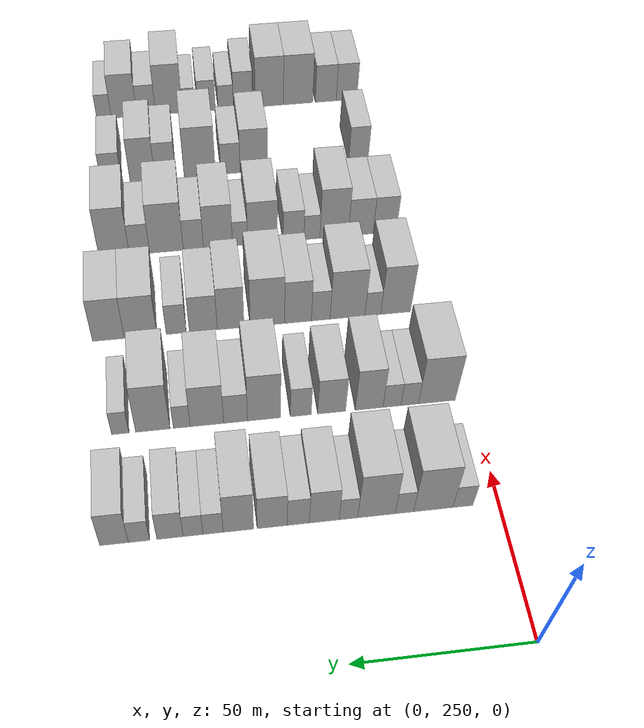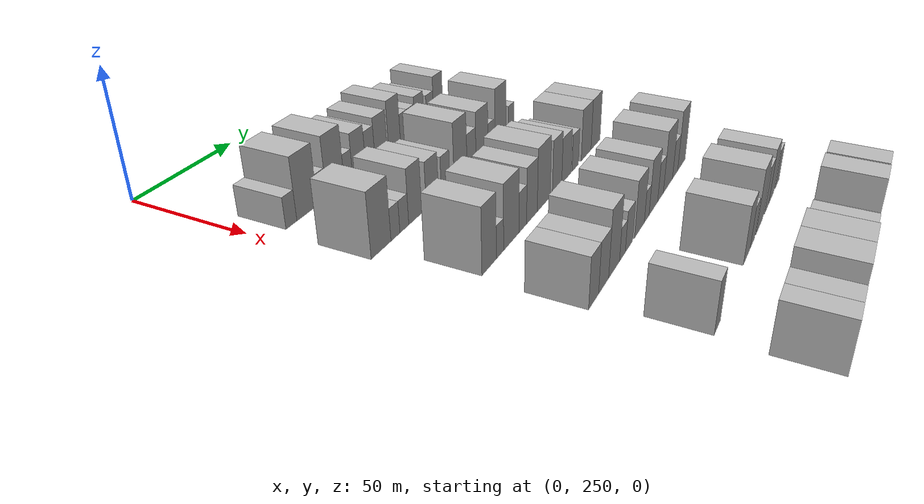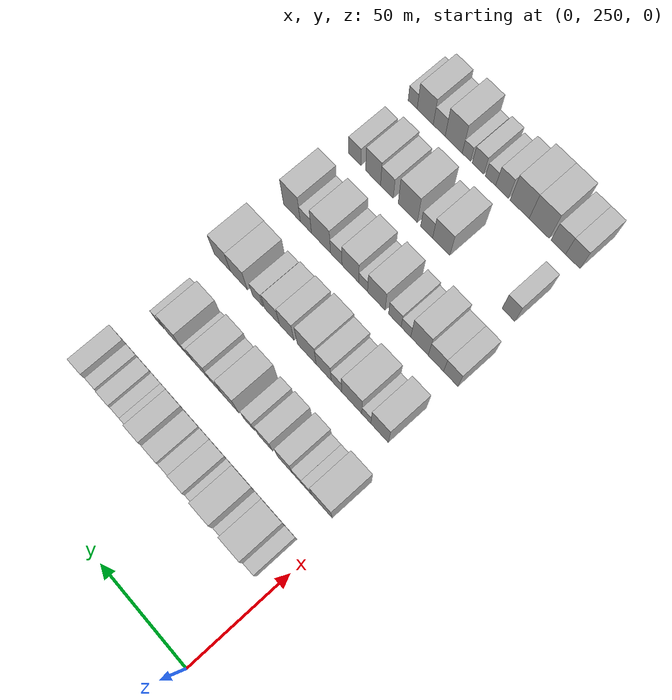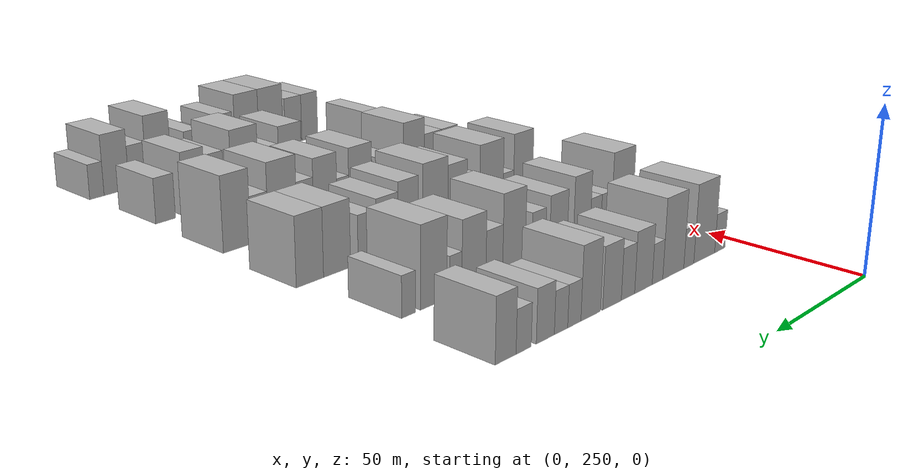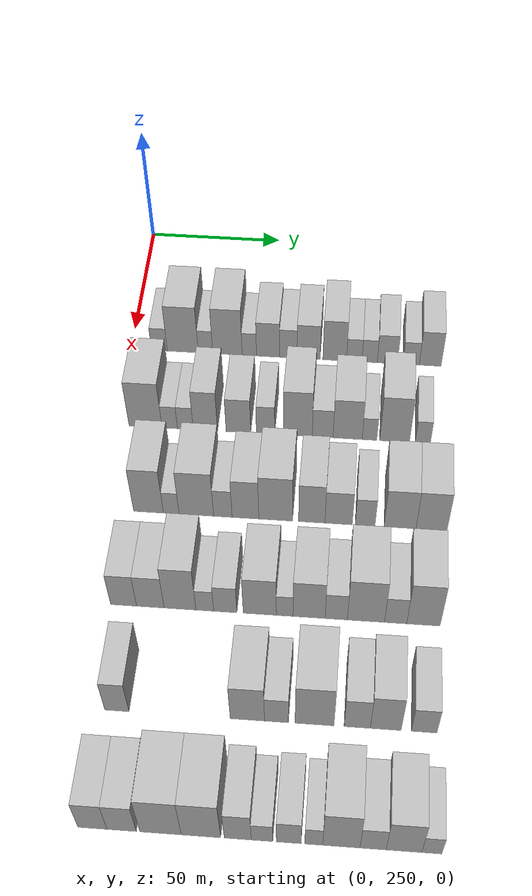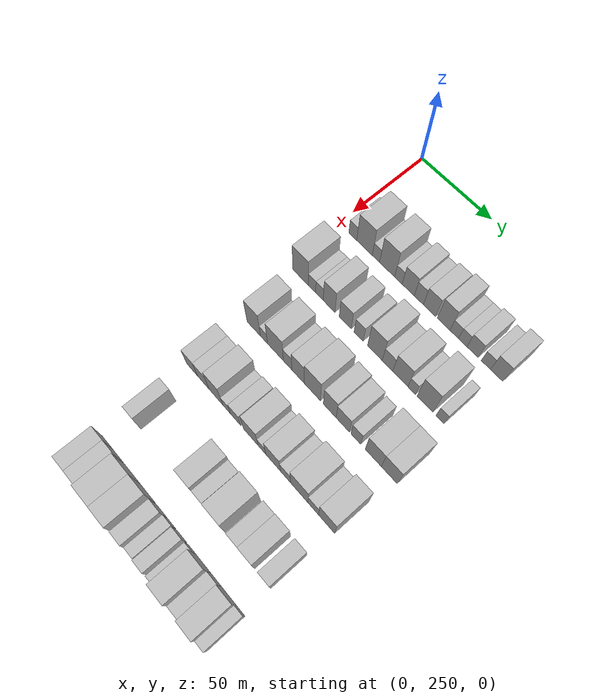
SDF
<sdf version="1.6">
 <world name="default">
  <model name="building_89">
   <static>1</static>
   <pose>50.0000 260.5096 0 0.000000 0.000000 0.000000</pose>
   <link name="link">
    <pose>0 0 6.00 0 0 0</pose>
    <collision name="collision"><geometry><box><size>20.0000 5.8154 12.0000</size></box></geometry></collision>
    <visual name="visual">
     <cast_shadows>0</cast_shadows>
     <geometry><box><size>20.0000 5.8154 12.0000</size></box></geometry>
     <material>
      <script>
       <uri>model://HANNAS_wall/materials/scripts</uri>
       <uri>model://HANNAS_wall/materials/textures</uri>
       <name>vrc/HANNAS_wall</name>
      </script>
     </material>
    </visual>
   </link>
  </model>
  <model name="building_90">
   <static>1</static>
   <pose>50.0000 269.1254 0 0.000000 0.000000 0.000000</pose>
   <link name="link">
    <pose>0 0 12.00 0 0 0</pose>
    <collision name="collision"><geometry><box><size>20.0000 11.4161 24.0000</size></box></geometry></collision>
    <visual name="visual">
     <cast_shadows>0</cast_shadows>
     <geometry><box><size>20.0000 11.4161 24.0000</size></box></geometry>
     <material>
      <script>
       <uri>model://HANNAS_wall/materials/scripts</uri>
       <uri>model://HANNAS_wall/materials/textures</uri>
       <name>vrc/HANNAS_wall</name>
      </script>
     </material>
    </visual>
   </link>
  </model>
  <model name="building_91">
   <static>1</static>
   <pose>50.0000 277.4851 0 0.000000 0.000000 0.000000</pose>
   <link name="link">
    <pose>0 0 6.00 0 0 0</pose>
    <collision name="collision"><geometry><box><size>20.0000 5.3033 12.0000</size></box></geometry></collision>
    <visual name="visual">
     <cast_shadows>0</cast_shadows>
     <geometry><box><size>20.0000 5.3033 12.0000</size></box></geometry>
     <material>
      <script>
       <uri>model://HANNAS_wall/materials/scripts</uri>
       <uri>model://HANNAS_wall/materials/textures</uri>
       <name>vrc/HANNAS_wall</name>
      </script>
     </material>
    </visual>
   </link>
  </model>
  <model name="building_92">
   <static>1</static>
   <pose>50.0000 285.5244 0 0.000000 0.000000 0.000000</pose>
   <link name="link">
    <pose>0 0 12.00 0 0 0</pose>
    <collision name="collision"><geometry><box><size>20.0000 10.7754 24.0000</size></box></geometry></collision>
    <visual name="visual">
     <cast_shadows>0</cast_shadows>
     <geometry><box><size>20.0000 10.7754 24.0000</size></box></geometry>
     <material>
      <script>
       <uri>model://HANNAS_wall/materials/scripts</uri>
       <uri>model://HANNAS_wall/materials/textures</uri>
       <name>vrc/HANNAS_wall</name>
      </script>
     </material>
    </visual>
   </link>
  </model>
  <model name="building_93">
   <static>1</static>
   <pose>50.0000 293.5522 0 0.000000 0.000000 0.000000</pose>
   <link name="link">
    <pose>0 0 6.00 0 0 0</pose>
    <collision name="collision"><geometry><box><size>20.0000 5.2801 12.0000</size></box></geometry></collision>
    <visual name="visual">
     <cast_shadows>0</cast_shadows>
     <geometry><box><size>20.0000 5.2801 12.0000</size></box></geometry>
     <material>
      <script>
       <uri>model://HANNAS_wall/materials/scripts</uri>
       <uri>model://HANNAS_wall/materials/textures</uri>
       <name>vrc/HANNAS_wall</name>
      </script>
     </material>
    </visual>
   </link>
  </model>
  <model name="building_94">
   <static>1</static>
   <pose>50.0000 300.4350 0 0.000000 0.000000 0.000000</pose>
   <link name="link">
    <pose>0 0 9.00 0 0 0</pose>
    <collision name="collision"><geometry><box><size>20.0000 8.4856 18.0000</size></box></geometry></collision>
    <visual name="visual">
     <cast_shadows>0</cast_shadows>
     <geometry><box><size>20.0000 8.4856 18.0000</size></box></geometry>
     <material>
      <script>
       <uri>model://HANNAS_wall/materials/scripts</uri>
       <uri>model://HANNAS_wall/materials/textures</uri>
       <name>vrc/HANNAS_wall</name>
      </script>
     </material>
    </visual>
   </link>
  </model>
  <model name="building_95">
   <static>1</static>
   <pose>50.0000 307.8226 0 0.000000 0.000000 0.000000</pose>
   <link name="link">
    <pose>0 0 7.50 0 0 0</pose>
    <collision name="collision"><geometry><box><size>20.0000 6.2896 15.0000</size></box></geometry></collision>
    <visual name="visual">
     <cast_shadows>0</cast_shadows>
     <geometry><box><size>20.0000 6.2896 15.0000</size></box></geometry>
     <material>
      <script>
       <uri>model://HANNAS_wall/materials/scripts</uri>
       <uri>model://HANNAS_wall/materials/textures</uri>
       <name>vrc/HANNAS_wall</name>
      </script>
     </material>
    </visual>
   </link>
  </model>
  <model name="building_96">
   <static>1</static>
   <pose>50.0000 315.2088 0 0.000000 0.000000 0.000000</pose>
   <link name="link">
    <pose>0 0 9.00 0 0 0</pose>
    <collision name="collision"><geometry><box><size>20.0000 8.4829 18.0000</size></box></geometry></collision>
    <visual name="visual">
     <cast_shadows>0</cast_shadows>
     <geometry><box><size>20.0000 8.4829 18.0000</size></box></geometry>
     <material>
      <script>
       <uri>model://HANNAS_wall/materials/scripts</uri>
       <uri>model://HANNAS_wall/materials/textures</uri>
       <name>vrc/HANNAS_wall</name>
      </script>
     </material>
    </visual>
   </link>
  </model>
  <model name="building_97">
   <static>1</static>
   <pose>50.0000 324.7460 0 0.000000 0.000000 0.000000</pose>
   <link name="link">
    <pose>0 0 10.50 0 0 0</pose>
    <collision name="collision"><geometry><box><size>20.0000 8.5914 21.0000</size></box></geometry></collision>
    <visual name="visual">
     <cast_shadows>0</cast_shadows>
     <geometry><box><size>20.0000 8.5914 21.0000</size></box></geometry>
     <material>
      <script>
       <uri>model://HANNAS_wall/materials/scripts</uri>
       <uri>model://HANNAS_wall/materials/textures</uri>
       <name>vrc/HANNAS_wall</name>
      </script>
     </material>
    </visual>
   </link>
  </model>
  <model name="building_98">
   <static>1</static>
   <pose>50.0000 331.8533 0 0.000000 0.000000 0.000000</pose>
   <link name="link">
    <pose>0 0 6.00 0 0 0</pose>
    <collision name="collision"><geometry><box><size>20.0000 5.6231 12.0000</size></box></geometry></collision>
    <visual name="visual">
     <cast_shadows>0</cast_shadows>
     <geometry><box><size>20.0000 5.6231 12.0000</size></box></geometry>
     <material>
      <script>
       <uri>model://HANNAS_wall/materials/scripts</uri>
       <uri>model://HANNAS_wall/materials/textures</uri>
       <name>vrc/HANNAS_wall</name>
      </script>
     </material>
    </visual>
   </link>
  </model>
  <model name="building_99">
   <static>1</static>
   <pose>50.0000 337.4431 0 0.000000 0.000000 0.000000</pose>
   <link name="link">
    <pose>0 0 6.00 0 0 0</pose>
    <collision name="collision"><geometry><box><size>20.0000 5.5565 12.0000</size></box></geometry></collision>
    <visual name="visual">
     <cast_shadows>0</cast_shadows>
     <geometry><box><size>20.0000 5.5565 12.0000</size></box></geometry>
     <material>
      <script>
       <uri>model://HANNAS_wall/materials/scripts</uri>
       <uri>model://HANNAS_wall/materials/textures</uri>
       <name>vrc/HANNAS_wall</name>
      </script>
     </material>
    </visual>
   </link>
  </model>
  <model name="building_100">
   <static>1</static>
   <pose>50.0000 343.8830 0 0.000000 0.000000 0.000000</pose>
   <link name="link">
    <pose>0 0 7.50 0 0 0</pose>
    <collision name="collision"><geometry><box><size>20.0000 7.3235 15.0000</size></box></geometry></collision>
    <visual name="visual">
     <cast_shadows>0</cast_shadows>
     <geometry><box><size>20.0000 7.3235 15.0000</size></box></geometry>
     <material>
      <script>
       <uri>model://HANNAS_wall/materials/scripts</uri>
       <uri>model://HANNAS_wall/materials/textures</uri>
       <name>vrc/HANNAS_wall</name>
      </script>
     </material>
    </visual>
   </link>
  </model>
  <model name="building_101">
   <static>1</static>
   <pose>50.0000 352.4976 0 0.000000 0.000000 0.000000</pose>
   <link name="link">
    <pose>0 0 6.00 0 0 0</pose>
    <collision name="collision"><geometry><box><size>20.0000 5.9057 12.0000</size></box></geometry></collision>
    <visual name="visual">
     <cast_shadows>0</cast_shadows>
     <geometry><box><size>20.0000 5.9057 12.0000</size></box></geometry>
     <material>
      <script>
       <uri>model://HANNAS_wall/materials/scripts</uri>
       <uri>model://HANNAS_wall/materials/textures</uri>
       <name>vrc/HANNAS_wall</name>
      </script>
     </material>
    </visual>
   </link>
  </model>
  <model name="building_102">
   <static>1</static>
   <pose>50.0000 359.4058 0 0.000000 0.000000 0.000000</pose>
   <link name="link">
    <pose>0 0 9.00 0 0 0</pose>
    <collision name="collision"><geometry><box><size>20.0000 7.9107 18.0000</size></box></geometry></collision>
    <visual name="visual">
     <cast_shadows>0</cast_shadows>
     <geometry><box><size>20.0000 7.9107 18.0000</size></box></geometry>
     <material>
      <script>
       <uri>model://HANNAS_wall/materials/scripts</uri>
       <uri>model://HANNAS_wall/materials/textures</uri>
       <name>vrc/HANNAS_wall</name>
      </script>
     </material>
    </visual>
   </link>
  </model>
  <model name="building_220">
   <static>1</static>
   <pose>85.0000 260.4116 0 0.000000 0.000000 0.000000</pose>
   <link name="link">
    <pose>0 0 12.00 0 0 0</pose>
    <collision name="collision"><geometry><box><size>20.0000 11.5459 24.0000</size></box></geometry></collision>
    <visual name="visual">
     <cast_shadows>0</cast_shadows>
     <geometry><box><size>20.0000 11.5459 24.0000</size></box></geometry>
     <material>
      <script>
       <uri>model://HANNAS_wall/materials/scripts</uri>
       <uri>model://HANNAS_wall/materials/textures</uri>
       <name>vrc/HANNAS_wall</name>
      </script>
     </material>
    </visual>
   </link>
  </model>
  <model name="building_221">
   <static>1</static>
   <pose>85.0000 268.8982 0 0.000000 0.000000 0.000000</pose>
   <link name="link">
    <pose>0 0 6.00 0 0 0</pose>
    <collision name="collision"><geometry><box><size>20.0000 5.4273 12.0000</size></box></geometry></collision>
    <visual name="visual">
     <cast_shadows>0</cast_shadows>
     <geometry><box><size>20.0000 5.4273 12.0000</size></box></geometry>
     <material>
      <script>
       <uri>model://HANNAS_wall/materials/scripts</uri>
       <uri>model://HANNAS_wall/materials/textures</uri>
       <name>vrc/HANNAS_wall</name>
      </script>
     </material>
    </visual>
   </link>
  </model>
  <model name="building_222">
   <static>1</static>
   <pose>85.0000 274.3841 0 0.000000 0.000000 0.000000</pose>
   <link name="link">
    <pose>0 0 6.00 0 0 0</pose>
    <collision name="collision"><geometry><box><size>20.0000 5.5444 12.0000</size></box></geometry></collision>
    <visual name="visual">
     <cast_shadows>0</cast_shadows>
     <geometry><box><size>20.0000 5.5444 12.0000</size></box></geometry>
     <material>
      <script>
       <uri>model://HANNAS_wall/materials/scripts</uri>
       <uri>model://HANNAS_wall/materials/textures</uri>
       <name>vrc/HANNAS_wall</name>
      </script>
     </material>
    </visual>
   </link>
  </model>
  <model name="building_223">
   <static>1</static>
   <pose>85.0000 281.4124 0 0.000000 0.000000 0.000000</pose>
   <link name="link">
    <pose>0 0 10.50 0 0 0</pose>
    <collision name="collision"><geometry><box><size>20.0000 8.5123 21.0000</size></box></geometry></collision>
    <visual name="visual">
     <cast_shadows>0</cast_shadows>
     <geometry><box><size>20.0000 8.5123 21.0000</size></box></geometry>
     <material>
      <script>
       <uri>model://HANNAS_wall/materials/scripts</uri>
       <uri>model://HANNAS_wall/materials/textures</uri>
       <name>vrc/HANNAS_wall</name>
      </script>
     </material>
    </visual>
   </link>
  </model>
  <model name="building_224">
   <static>1</static>
   <pose>85.0000 292.9535 0 0.000000 0.000000 0.000000</pose>
   <link name="link">
    <pose>0 0 9.00 0 0 0</pose>
    <collision name="collision"><geometry><box><size>20.0000 8.5698 18.0000</size></box></geometry></collision>
    <visual name="visual">
     <cast_shadows>0</cast_shadows>
     <geometry><box><size>20.0000 8.5698 18.0000</size></box></geometry>
     <material>
      <script>
       <uri>model://HANNAS_wall/materials/scripts</uri>
       <uri>model://HANNAS_wall/materials/textures</uri>
       <name>vrc/HANNAS_wall</name>
      </script>
     </material>
    </visual>
   </link>
  </model>
  <model name="building_225">
   <static>1</static>
   <pose>85.0000 302.4314 0 0.000000 0.000000 0.000000</pose>
   <link name="link">
    <pose>0 0 7.50 0 0 0</pose>
    <collision name="collision"><geometry><box><size>20.0000 6.3861 15.0000</size></box></geometry></collision>
    <visual name="visual">
     <cast_shadows>0</cast_shadows>
     <geometry><box><size>20.0000 6.3861 15.0000</size></box></geometry>
     <material>
      <script>
       <uri>model://HANNAS_wall/materials/scripts</uri>
       <uri>model://HANNAS_wall/materials/textures</uri>
       <name>vrc/HANNAS_wall</name>
      </script>
     </material>
    </visual>
   </link>
  </model>
  <model name="building_226">
   <static>1</static>
   <pose>85.0000 313.6471 0 0.000000 0.000000 0.000000</pose>
   <link name="link">
    <pose>0 0 12.00 0 0 0</pose>
    <collision name="collision"><geometry><box><size>20.0000 10.0453 24.0000</size></box></geometry></collision>
    <visual name="visual">
     <cast_shadows>0</cast_shadows>
     <geometry><box><size>20.0000 10.0453 24.0000</size></box></geometry>
     <material>
      <script>
       <uri>model://HANNAS_wall/materials/scripts</uri>
       <uri>model://HANNAS_wall/materials/textures</uri>
       <name>vrc/HANNAS_wall</name>
      </script>
     </material>
    </visual>
   </link>
  </model>
  <model name="building_227">
   <static>1</static>
   <pose>85.0000 322.2818 0 0.000000 0.000000 0.000000</pose>
   <link name="link">
    <pose>0 0 7.50 0 0 0</pose>
    <collision name="collision"><geometry><box><size>20.0000 7.2240 15.0000</size></box></geometry></collision>
    <visual name="visual">
     <cast_shadows>0</cast_shadows>
     <geometry><box><size>20.0000 7.2240 15.0000</size></box></geometry>
     <material>
      <script>
       <uri>model://HANNAS_wall/materials/scripts</uri>
       <uri>model://HANNAS_wall/materials/textures</uri>
       <name>vrc/HANNAS_wall</name>
      </script>
     </material>
    </visual>
   </link>
  </model>
  <model name="building_228">
   <static>1</static>
   <pose>85.0000 330.9321 0 0.000000 0.000000 0.000000</pose>
   <link name="link">
    <pose>0 0 10.50 0 0 0</pose>
    <collision name="collision"><geometry><box><size>20.0000 10.0766 21.0000</size></box></geometry></collision>
    <visual name="visual">
     <cast_shadows>0</cast_shadows>
     <geometry><box><size>20.0000 10.0766 21.0000</size></box></geometry>
     <material>
      <script>
       <uri>model://HANNAS_wall/materials/scripts</uri>
       <uri>model://HANNAS_wall/materials/textures</uri>
       <name>vrc/HANNAS_wall</name>
      </script>
     </material>
    </visual>
   </link>
  </model>
  <model name="building_229">
   <static>1</static>
   <pose>85.0000 338.4950 0 0.000000 0.000000 0.000000</pose>
   <link name="link">
    <pose>0 0 6.00 0 0 0</pose>
    <collision name="collision"><geometry><box><size>20.0000 5.0493 12.0000</size></box></geometry></collision>
    <visual name="visual">
     <cast_shadows>0</cast_shadows>
     <geometry><box><size>20.0000 5.0493 12.0000</size></box></geometry>
     <material>
      <script>
       <uri>model://HANNAS_wall/materials/scripts</uri>
       <uri>model://HANNAS_wall/materials/textures</uri>
       <name>vrc/HANNAS_wall</name>
      </script>
     </material>
    </visual>
   </link>
  </model>
  <model name="building_230">
   <static>1</static>
   <pose>85.0000 347.1779 0 0.000000 0.000000 0.000000</pose>
   <link name="link">
    <pose>0 0 12.00 0 0 0</pose>
    <collision name="collision"><geometry><box><size>20.0000 10.3165 24.0000</size></box></geometry></collision>
    <visual name="visual">
     <cast_shadows>0</cast_shadows>
     <geometry><box><size>20.0000 10.3165 24.0000</size></box></geometry>
     <material>
      <script>
       <uri>model://HANNAS_wall/materials/scripts</uri>
       <uri>model://HANNAS_wall/materials/textures</uri>
       <name>vrc/HANNAS_wall</name>
      </script>
     </material>
    </visual>
   </link>
  </model>
  <model name="building_231">
   <static>1</static>
   <pose>85.0000 356.9237 0 0.000000 0.000000 0.000000</pose>
   <link name="link">
    <pose>0 0 6.00 0 0 0</pose>
    <collision name="collision"><geometry><box><size>20.0000 5.1751 12.0000</size></box></geometry></collision>
    <visual name="visual">
     <cast_shadows>0</cast_shadows>
     <geometry><box><size>20.0000 5.1751 12.0000</size></box></geometry>
     <material>
      <script>
       <uri>model://HANNAS_wall/materials/scripts</uri>
       <uri>model://HANNAS_wall/materials/textures</uri>
       <name>vrc/HANNAS_wall</name>
      </script>
     </material>
    </visual>
   </link>
  </model>
  <model name="building_345">
   <static>1</static>
   <pose>120.0000 266.4352 0 0.000000 0.000000 0.000000</pose>
   <link name="link">
    <pose>0 0 12.00 0 0 0</pose>
    <collision name="collision"><geometry><box><size>20.0000 9.9233 24.0000</size></box></geometry></collision>
    <visual name="visual">
     <cast_shadows>0</cast_shadows>
     <geometry><box><size>20.0000 9.9233 24.0000</size></box></geometry>
     <material>
      <script>
       <uri>model://HANNAS_wall/materials/scripts</uri>
       <uri>model://HANNAS_wall/materials/textures</uri>
       <name>vrc/HANNAS_wall</name>
      </script>
     </material>
    </visual>
   </link>
  </model>
  <model name="building_346">
   <static>1</static>
   <pose>120.0000 273.9935 0 0.000000 0.000000 0.000000</pose>
   <link name="link">
    <pose>0 0 6.00 0 0 0</pose>
    <collision name="collision"><geometry><box><size>20.0000 5.1934 12.0000</size></box></geometry></collision>
    <visual name="visual">
     <cast_shadows>0</cast_shadows>
     <geometry><box><size>20.0000 5.1934 12.0000</size></box></geometry>
     <material>
      <script>
       <uri>model://HANNAS_wall/materials/scripts</uri>
       <uri>model://HANNAS_wall/materials/textures</uri>
       <name>vrc/HANNAS_wall</name>
      </script>
     </material>
    </visual>
   </link>
  </model>
  <model name="building_347">
   <static>1</static>
   <pose>120.0000 282.3563 0 0.000000 0.000000 0.000000</pose>
   <link name="link">
    <pose>0 0 12.00 0 0 0</pose>
    <collision name="collision"><geometry><box><size>20.0000 11.5321 24.0000</size></box></geometry></collision>
    <visual name="visual">
     <cast_shadows>0</cast_shadows>
     <geometry><box><size>20.0000 11.5321 24.0000</size></box></geometry>
     <material>
      <script>
       <uri>model://HANNAS_wall/materials/scripts</uri>
       <uri>model://HANNAS_wall/materials/textures</uri>
       <name>vrc/HANNAS_wall</name>
      </script>
     </material>
    </visual>
   </link>
  </model>
  <model name="building_348">
   <static>1</static>
   <pose>120.0000 291.1794 0 0.000000 0.000000 0.000000</pose>
   <link name="link">
    <pose>0 0 7.50 0 0 0</pose>
    <collision name="collision"><geometry><box><size>20.0000 6.1141 15.0000</size></box></geometry></collision>
    <visual name="visual">
     <cast_shadows>0</cast_shadows>
     <geometry><box><size>20.0000 6.1141 15.0000</size></box></geometry>
     <material>
      <script>
       <uri>model://HANNAS_wall/materials/scripts</uri>
       <uri>model://HANNAS_wall/materials/textures</uri>
       <name>vrc/HANNAS_wall</name>
      </script>
     </material>
    </visual>
   </link>
  </model>
  <model name="building_349">
   <static>1</static>
   <pose>120.0000 298.6476 0 0.000000 0.000000 0.000000</pose>
   <link name="link">
    <pose>0 0 10.50 0 0 0</pose>
    <collision name="collision"><geometry><box><size>20.0000 8.8222 21.0000</size></box></geometry></collision>
    <visual name="visual">
     <cast_shadows>0</cast_shadows>
     <geometry><box><size>20.0000 8.8222 21.0000</size></box></geometry>
     <material>
      <script>
       <uri>model://HANNAS_wall/materials/scripts</uri>
       <uri>model://HANNAS_wall/materials/textures</uri>
       <name>vrc/HANNAS_wall</name>
      </script>
     </material>
    </visual>
   </link>
  </model>
  <model name="building_350">
   <static>1</static>
   <pose>120.0000 308.6515 0 0.000000 0.000000 0.000000</pose>
   <link name="link">
    <pose>0 0 12.00 0 0 0</pose>
    <collision name="collision"><geometry><box><size>20.0000 11.1856 24.0000</size></box></geometry></collision>
    <visual name="visual">
     <cast_shadows>0</cast_shadows>
     <geometry><box><size>20.0000 11.1856 24.0000</size></box></geometry>
     <material>
      <script>
       <uri>model://HANNAS_wall/materials/scripts</uri>
       <uri>model://HANNAS_wall/materials/textures</uri>
       <name>vrc/HANNAS_wall</name>
      </script>
     </material>
    </visual>
   </link>
  </model>
  <model name="building_351">
   <static>1</static>
   <pose>120.0000 320.5986 0 0.000000 0.000000 0.000000</pose>
   <link name="link">
    <pose>0 0 10.50 0 0 0</pose>
    <collision name="collision"><geometry><box><size>20.0000 8.7086 21.0000</size></box></geometry></collision>
    <visual name="visual">
     <cast_shadows>0</cast_shadows>
     <geometry><box><size>20.0000 8.7086 21.0000</size></box></geometry>
     <material>
      <script>
       <uri>model://HANNAS_wall/materials/scripts</uri>
       <uri>model://HANNAS_wall/materials/textures</uri>
       <name>vrc/HANNAS_wall</name>
      </script>
     </material>
    </visual>
   </link>
  </model>
  <model name="building_352">
   <static>1</static>
   <pose>120.0000 329.4410 0 0.000000 0.000000 0.000000</pose>
   <link name="link">
    <pose>0 0 9.00 0 0 0</pose>
    <collision name="collision"><geometry><box><size>20.0000 8.9762 18.0000</size></box></geometry></collision>
    <visual name="visual">
     <cast_shadows>0</cast_shadows>
     <geometry><box><size>20.0000 8.9762 18.0000</size></box></geometry>
     <material>
      <script>
       <uri>model://HANNAS_wall/materials/scripts</uri>
       <uri>model://HANNAS_wall/materials/textures</uri>
       <name>vrc/HANNAS_wall</name>
      </script>
     </material>
    </visual>
   </link>
  </model>
  <model name="building_353">
   <static>1</static>
   <pose>120.0000 338.1611 0 0.000000 0.000000 0.000000</pose>
   <link name="link">
    <pose>0 0 7.50 0 0 0</pose>
    <collision name="collision"><geometry><box><size>20.0000 6.4640 15.0000</size></box></geometry></collision>
    <visual name="visual">
     <cast_shadows>0</cast_shadows>
     <geometry><box><size>20.0000 6.4640 15.0000</size></box></geometry>
     <material>
      <script>
       <uri>model://HANNAS_wall/materials/scripts</uri>
       <uri>model://HANNAS_wall/materials/textures</uri>
       <name>vrc/HANNAS_wall</name>
      </script>
     </material>
    </visual>
   </link>
  </model>
  <model name="building_354">
   <static>1</static>
   <pose>120.0000 349.6200 0 0.000000 0.000000 0.000000</pose>
   <link name="link">
    <pose>0 0 10.50 0 0 0</pose>
    <collision name="collision"><geometry><box><size>20.0000 10.4539 21.0000</size></box></geometry></collision>
    <visual name="visual">
     <cast_shadows>0</cast_shadows>
     <geometry><box><size>20.0000 10.4539 21.0000</size></box></geometry>
     <material>
      <script>
       <uri>model://HANNAS_wall/materials/scripts</uri>
       <uri>model://HANNAS_wall/materials/textures</uri>
       <name>vrc/HANNAS_wall</name>
      </script>
     </material>
    </visual>
   </link>
  </model>
  <model name="building_355">
   <static>1</static>
   <pose>120.0000 359.9261 0 0.000000 0.000000 0.000000</pose>
   <link name="link">
    <pose>0 0 10.50 0 0 0</pose>
    <collision name="collision"><geometry><box><size>20.0000 10.1583 21.0000</size></box></geometry></collision>
    <visual name="visual">
     <cast_shadows>0</cast_shadows>
     <geometry><box><size>20.0000 10.1583 21.0000</size></box></geometry>
     <material>
      <script>
       <uri>model://HANNAS_wall/materials/scripts</uri>
       <uri>model://HANNAS_wall/materials/textures</uri>
       <name>vrc/HANNAS_wall</name>
      </script>
     </material>
    </visual>
   </link>
  </model>
  <model name="building_472">
   <static>1</static>
   <pose>155.0000 263.5040 0 0.000000 0.000000 0.000000</pose>
   <link name="link">
    <pose>0 0 9.00 0 0 0</pose>
    <collision name="collision"><geometry><box><size>20.0000 8.2185 18.0000</size></box></geometry></collision>
    <visual name="visual">
     <cast_shadows>0</cast_shadows>
     <geometry><box><size>20.0000 8.2185 18.0000</size></box></geometry>
     <material>
      <script>
       <uri>model://HANNAS_wall/materials/scripts</uri>
       <uri>model://HANNAS_wall/materials/textures</uri>
       <name>vrc/HANNAS_wall</name>
      </script>
     </material>
    </visual>
   </link>
  </model>
  <model name="building_473">
   <static>1</static>
   <pose>155.0000 271.9678 0 0.000000 0.000000 0.000000</pose>
   <link name="link">
    <pose>0 0 9.00 0 0 0</pose>
    <collision name="collision"><geometry><box><size>20.0000 8.7090 18.0000</size></box></geometry></collision>
    <visual name="visual">
     <cast_shadows>0</cast_shadows>
     <geometry><box><size>20.0000 8.7090 18.0000</size></box></geometry>
     <material>
      <script>
       <uri>model://HANNAS_wall/materials/scripts</uri>
       <uri>model://HANNAS_wall/materials/textures</uri>
       <name>vrc/HANNAS_wall</name>
      </script>
     </material>
    </visual>
   </link>
  </model>
  <model name="building_474">
   <static>1</static>
   <pose>155.0000 281.3367 0 0.000000 0.000000 0.000000</pose>
   <link name="link">
    <pose>0 0 12.00 0 0 0</pose>
    <collision name="collision"><geometry><box><size>20.0000 10.0288 24.0000</size></box></geometry></collision>
    <visual name="visual">
     <cast_shadows>0</cast_shadows>
     <geometry><box><size>20.0000 10.0288 24.0000</size></box></geometry>
     <material>
      <script>
       <uri>model://HANNAS_wall/materials/scripts</uri>
       <uri>model://HANNAS_wall/materials/textures</uri>
       <name>vrc/HANNAS_wall</name>
      </script>
     </material>
    </visual>
   </link>
  </model>
  <model name="building_475">
   <static>1</static>
   <pose>155.0000 289.1470 0 0.000000 0.000000 0.000000</pose>
   <link name="link">
    <pose>0 0 6.00 0 0 0</pose>
    <collision name="collision"><geometry><box><size>20.0000 5.5919 12.0000</size></box></geometry></collision>
    <visual name="visual">
     <cast_shadows>0</cast_shadows>
     <geometry><box><size>20.0000 5.5919 12.0000</size></box></geometry>
     <material>
      <script>
       <uri>model://HANNAS_wall/materials/scripts</uri>
       <uri>model://HANNAS_wall/materials/textures</uri>
       <name>vrc/HANNAS_wall</name>
      </script>
     </material>
    </visual>
   </link>
  </model>
  <model name="building_476">
   <static>1</static>
   <pose>155.0000 295.5927 0 0.000000 0.000000 0.000000</pose>
   <link name="link">
    <pose>0 0 7.50 0 0 0</pose>
    <collision name="collision"><geometry><box><size>20.0000 7.2995 15.0000</size></box></geometry></collision>
    <visual name="visual">
     <cast_shadows>0</cast_shadows>
     <geometry><box><size>20.0000 7.2995 15.0000</size></box></geometry>
     <material>
      <script>
       <uri>model://HANNAS_wall/materials/scripts</uri>
       <uri>model://HANNAS_wall/materials/textures</uri>
       <name>vrc/HANNAS_wall</name>
      </script>
     </material>
    </visual>
   </link>
  </model>
  <model name="building_477">
   <static>1</static>
   <pose>155.0000 306.4254 0 0.000000 0.000000 0.000000</pose>
   <link name="link">
    <pose>0 0 10.50 0 0 0</pose>
    <collision name="collision"><geometry><box><size>20.0000 10.3660 21.0000</size></box></geometry></collision>
    <visual name="visual">
     <cast_shadows>0</cast_shadows>
     <geometry><box><size>20.0000 10.3660 21.0000</size></box></geometry>
     <material>
      <script>
       <uri>model://HANNAS_wall/materials/scripts</uri>
       <uri>model://HANNAS_wall/materials/textures</uri>
       <name>vrc/HANNAS_wall</name>
      </script>
     </material>
    </visual>
   </link>
  </model>
  <model name="building_478">
   <static>1</static>
   <pose>155.0000 314.2085 0 0.000000 0.000000 0.000000</pose>
   <link name="link">
    <pose>0 0 6.00 0 0 0</pose>
    <collision name="collision"><geometry><box><size>20.0000 5.2000 12.0000</size></box></geometry></collision>
    <visual name="visual">
     <cast_shadows>0</cast_shadows>
     <geometry><box><size>20.0000 5.2000 12.0000</size></box></geometry>
     <material>
      <script>
       <uri>model://HANNAS_wall/materials/scripts</uri>
       <uri>model://HANNAS_wall/materials/textures</uri>
       <name>vrc/HANNAS_wall</name>
      </script>
     </material>
    </visual>
   </link>
  </model>
  <model name="building_479">
   <static>1</static>
   <pose>155.0000 321.8267 0 0.000000 0.000000 0.000000</pose>
   <link name="link">
    <pose>0 0 10.50 0 0 0</pose>
    <collision name="collision"><geometry><box><size>20.0000 10.0365 21.0000</size></box></geometry></collision>
    <visual name="visual">
     <cast_shadows>0</cast_shadows>
     <geometry><box><size>20.0000 10.0365 21.0000</size></box></geometry>
     <material>
      <script>
       <uri>model://HANNAS_wall/materials/scripts</uri>
       <uri>model://HANNAS_wall/materials/textures</uri>
       <name>vrc/HANNAS_wall</name>
      </script>
     </material>
    </visual>
   </link>
  </model>
  <model name="building_480">
   <static>1</static>
   <pose>155.0000 330.3084 0 0.000000 0.000000 0.000000</pose>
   <link name="link">
    <pose>0 0 7.50 0 0 0</pose>
    <collision name="collision"><geometry><box><size>20.0000 6.9270 15.0000</size></box></geometry></collision>
    <visual name="visual">
     <cast_shadows>0</cast_shadows>
     <geometry><box><size>20.0000 6.9270 15.0000</size></box></geometry>
     <material>
      <script>
       <uri>model://HANNAS_wall/materials/scripts</uri>
       <uri>model://HANNAS_wall/materials/textures</uri>
       <name>vrc/HANNAS_wall</name>
      </script>
     </material>
    </visual>
   </link>
  </model>
  <model name="building_481">
   <static>1</static>
   <pose>155.0000 339.5524 0 0.000000 0.000000 0.000000</pose>
   <link name="link">
    <pose>0 0 12.00 0 0 0</pose>
    <collision name="collision"><geometry><box><size>20.0000 11.5610 24.0000</size></box></geometry></collision>
    <visual name="visual">
     <cast_shadows>0</cast_shadows>
     <geometry><box><size>20.0000 11.5610 24.0000</size></box></geometry>
     <material>
      <script>
       <uri>model://HANNAS_wall/materials/scripts</uri>
       <uri>model://HANNAS_wall/materials/textures</uri>
       <name>vrc/HANNAS_wall</name>
      </script>
     </material>
    </visual>
   </link>
  </model>
  <model name="building_482">
   <static>1</static>
   <pose>155.0000 348.7845 0 0.000000 0.000000 0.000000</pose>
   <link name="link">
    <pose>0 0 7.50 0 0 0</pose>
    <collision name="collision"><geometry><box><size>20.0000 6.9032 15.0000</size></box></geometry></collision>
    <visual name="visual">
     <cast_shadows>0</cast_shadows>
     <geometry><box><size>20.0000 6.9032 15.0000</size></box></geometry>
     <material>
      <script>
       <uri>model://HANNAS_wall/materials/scripts</uri>
       <uri>model://HANNAS_wall/materials/textures</uri>
       <name>vrc/HANNAS_wall</name>
      </script>
     </material>
    </visual>
   </link>
  </model>
  <model name="building_483">
   <static>1</static>
   <pose>155.0000 357.4061 0 0.000000 0.000000 0.000000</pose>
   <link name="link">
    <pose>0 0 12.00 0 0 0</pose>
    <collision name="collision"><geometry><box><size>20.0000 10.3402 24.0000</size></box></geometry></collision>
    <visual name="visual">
     <cast_shadows>0</cast_shadows>
     <geometry><box><size>20.0000 10.3402 24.0000</size></box></geometry>
     <material>
      <script>
       <uri>model://HANNAS_wall/materials/scripts</uri>
       <uri>model://HANNAS_wall/materials/textures</uri>
       <name>vrc/HANNAS_wall</name>
      </script>
     </material>
    </visual>
   </link>
  </model>
  <model name="building_598">
   <static>1</static>
   <pose>190.0000 266.9166 0 0.000000 0.000000 0.000000</pose>
   <link name="link">
    <pose>0 0 9.00 0 0 0</pose>
    <collision name="collision"><geometry><box><size>20.0000 7.2568 18.0000</size></box></geometry></collision>
    <visual name="visual">
     <cast_shadows>0</cast_shadows>
     <geometry><box><size>20.0000 7.2568 18.0000</size></box></geometry>
     <material>
      <script>
       <uri>model://HANNAS_wall/materials/scripts</uri>
       <uri>model://HANNAS_wall/materials/textures</uri>
       <name>vrc/HANNAS_wall</name>
      </script>
     </material>
    </visual>
   </link>
  </model>
  <model name="building_599">
   <static>1</static>
   <pose>190.0000 305.7445 0 0.000000 0.000000 0.000000</pose>
   <link name="link">
    <pose>0 0 10.50 0 0 0</pose>
    <collision name="collision"><geometry><box><size>20.0000 10.1330 21.0000</size></box></geometry></collision>
    <visual name="visual">
     <cast_shadows>0</cast_shadows>
     <geometry><box><size>20.0000 10.1330 21.0000</size></box></geometry>
     <material>
      <script>
       <uri>model://HANNAS_wall/materials/scripts</uri>
       <uri>model://HANNAS_wall/materials/textures</uri>
       <name>vrc/HANNAS_wall</name>
      </script>
     </material>
    </visual>
   </link>
  </model>
  <model name="building_600">
   <static>1</static>
   <pose>190.0000 314.3391 0 0.000000 0.000000 0.000000</pose>
   <link name="link">
    <pose>0 0 7.50 0 0 0</pose>
    <collision name="collision"><geometry><box><size>20.0000 7.0561 15.0000</size></box></geometry></collision>
    <visual name="visual">
     <cast_shadows>0</cast_shadows>
     <geometry><box><size>20.0000 7.0561 15.0000</size></box></geometry>
     <material>
      <script>
       <uri>model://HANNAS_wall/materials/scripts</uri>
       <uri>model://HANNAS_wall/materials/textures</uri>
       <name>vrc/HANNAS_wall</name>
      </script>
     </material>
    </visual>
   </link>
  </model>
  <model name="building_601">
   <static>1</static>
   <pose>190.0000 325.5868 0 0.000000 0.000000 0.000000</pose>
   <link name="link">
    <pose>0 0 12.00 0 0 0</pose>
    <collision name="collision"><geometry><box><size>20.0000 11.4393 24.0000</size></box></geometry></collision>
    <visual name="visual">
     <cast_shadows>0</cast_shadows>
     <geometry><box><size>20.0000 11.4393 24.0000</size></box></geometry>
     <material>
      <script>
       <uri>model://HANNAS_wall/materials/scripts</uri>
       <uri>model://HANNAS_wall/materials/textures</uri>
       <name>vrc/HANNAS_wall</name>
      </script>
     </material>
    </visual>
   </link>
  </model>
  <model name="building_602">
   <static>1</static>
   <pose>190.0000 338.1486 0 0.000000 0.000000 0.000000</pose>
   <link name="link">
    <pose>0 0 9.00 0 0 0</pose>
    <collision name="collision"><geometry><box><size>20.0000 7.6843 18.0000</size></box></geometry></collision>
    <visual name="visual">
     <cast_shadows>0</cast_shadows>
     <geometry><box><size>20.0000 7.6843 18.0000</size></box></geometry>
     <material>
      <script>
       <uri>model://HANNAS_wall/materials/scripts</uri>
       <uri>model://HANNAS_wall/materials/textures</uri>
       <name>vrc/HANNAS_wall</name>
      </script>
     </material>
    </visual>
   </link>
  </model>
  <model name="building_603">
   <static>1</static>
   <pose>190.0000 346.5142 0 0.000000 0.000000 0.000000</pose>
   <link name="link">
    <pose>0 0 10.50 0 0 0</pose>
    <collision name="collision"><geometry><box><size>20.0000 9.0468 21.0000</size></box></geometry></collision>
    <visual name="visual">
     <cast_shadows>0</cast_shadows>
     <geometry><box><size>20.0000 9.0468 21.0000</size></box></geometry>
     <material>
      <script>
       <uri>model://HANNAS_wall/materials/scripts</uri>
       <uri>model://HANNAS_wall/materials/textures</uri>
       <name>vrc/HANNAS_wall</name>
      </script>
     </material>
    </visual>
   </link>
  </model>
  <model name="building_604">
   <static>1</static>
   <pose>190.0000 357.7785 0 0.000000 0.000000 0.000000</pose>
   <link name="link">
    <pose>0 0 7.50 0 0 0</pose>
    <collision name="collision"><geometry><box><size>20.0000 7.4818 15.0000</size></box></geometry></collision>
    <visual name="visual">
     <cast_shadows>0</cast_shadows>
     <geometry><box><size>20.0000 7.4818 15.0000</size></box></geometry>
     <material>
      <script>
       <uri>model://HANNAS_wall/materials/scripts</uri>
       <uri>model://HANNAS_wall/materials/textures</uri>
       <name>vrc/HANNAS_wall</name>
      </script>
     </material>
    </visual>
   </link>
  </model>
  <model name="building_717">
   <static>1</static>
   <pose>225.0000 265.5701 0 0.000000 0.000000 0.000000</pose>
   <link name="link">
    <pose>0 0 9.00 0 0 0</pose>
    <collision name="collision"><geometry><box><size>20.0000 8.1661 18.0000</size></box></geometry></collision>
    <visual name="visual">
     <cast_shadows>0</cast_shadows>
     <geometry><box><size>20.0000 8.1661 18.0000</size></box></geometry>
     <material>
      <script>
       <uri>model://HANNAS_wall/materials/scripts</uri>
       <uri>model://HANNAS_wall/materials/textures</uri>
       <name>vrc/HANNAS_wall</name>
      </script>
     </material>
    </visual>
   </link>
  </model>
  <model name="building_718">
   <static>1</static>
   <pose>225.0000 273.7778 0 0.000000 0.000000 0.000000</pose>
   <link name="link">
    <pose>0 0 9.00 0 0 0</pose>
    <collision name="collision"><geometry><box><size>20.0000 8.2493 18.0000</size></box></geometry></collision>
    <visual name="visual">
     <cast_shadows>0</cast_shadows>
     <geometry><box><size>20.0000 8.2493 18.0000</size></box></geometry>
     <material>
      <script>
       <uri>model://HANNAS_wall/materials/scripts</uri>
       <uri>model://HANNAS_wall/materials/textures</uri>
       <name>vrc/HANNAS_wall</name>
      </script>
     </material>
    </visual>
   </link>
  </model>
  <model name="building_719">
   <static>1</static>
   <pose>225.0000 284.7021 0 0.000000 0.000000 0.000000</pose>
   <link name="link">
    <pose>0 0 12.00 0 0 0</pose>
    <collision name="collision"><geometry><box><size>20.0000 11.5992 24.0000</size></box></geometry></collision>
    <visual name="visual">
     <cast_shadows>0</cast_shadows>
     <geometry><box><size>20.0000 11.5992 24.0000</size></box></geometry>
     <material>
      <script>
       <uri>model://HANNAS_wall/materials/scripts</uri>
       <uri>model://HANNAS_wall/materials/textures</uri>
       <name>vrc/HANNAS_wall</name>
      </script>
     </material>
    </visual>
   </link>
  </model>
  <model name="building_720">
   <static>1</static>
   <pose>225.0000 296.0198 0 0.000000 0.000000 0.000000</pose>
   <link name="link">
    <pose>0 0 12.00 0 0 0</pose>
    <collision name="collision"><geometry><box><size>20.0000 11.0363 24.0000</size></box></geometry></collision>
    <visual name="visual">
     <cast_shadows>0</cast_shadows>
     <geometry><box><size>20.0000 11.0363 24.0000</size></box></geometry>
     <material>
      <script>
       <uri>model://HANNAS_wall/materials/scripts</uri>
       <uri>model://HANNAS_wall/materials/textures</uri>
       <name>vrc/HANNAS_wall</name>
      </script>
     </material>
    </visual>
   </link>
  </model>
  <model name="building_721">
   <static>1</static>
   <pose>225.0000 306.2968 0 0.000000 0.000000 0.000000</pose>
   <link name="link">
    <pose>0 0 9.00 0 0 0</pose>
    <collision name="collision"><geometry><box><size>20.0000 7.5178 18.0000</size></box></geometry></collision>
    <visual name="visual">
     <cast_shadows>0</cast_shadows>
     <geometry><box><size>20.0000 7.5178 18.0000</size></box></geometry>
     <material>
      <script>
       <uri>model://HANNAS_wall/materials/scripts</uri>
       <uri>model://HANNAS_wall/materials/textures</uri>
       <name>vrc/HANNAS_wall</name>
      </script>
     </material>
    </visual>
   </link>
  </model>
  <model name="building_722">
   <static>1</static>
   <pose>225.0000 313.0478 0 0.000000 0.000000 0.000000</pose>
   <link name="link">
    <pose>0 0 6.00 0 0 0</pose>
    <collision name="collision"><geometry><box><size>20.0000 5.9842 12.0000</size></box></geometry></collision>
    <visual name="visual">
     <cast_shadows>0</cast_shadows>
     <geometry><box><size>20.0000 5.9842 12.0000</size></box></geometry>
     <material>
      <script>
       <uri>model://HANNAS_wall/materials/scripts</uri>
       <uri>model://HANNAS_wall/materials/textures</uri>
       <name>vrc/HANNAS_wall</name>
      </script>
     </material>
    </visual>
   </link>
  </model>
  <model name="building_723">
   <static>1</static>
   <pose>225.0000 320.4771 0 0.000000 0.000000 0.000000</pose>
   <link name="link">
    <pose>0 0 7.50 0 0 0</pose>
    <collision name="collision"><geometry><box><size>20.0000 6.8744 15.0000</size></box></geometry></collision>
    <visual name="visual">
     <cast_shadows>0</cast_shadows>
     <geometry><box><size>20.0000 6.8744 15.0000</size></box></geometry>
     <material>
      <script>
       <uri>model://HANNAS_wall/materials/scripts</uri>
       <uri>model://HANNAS_wall/materials/textures</uri>
       <name>vrc/HANNAS_wall</name>
      </script>
     </material>
    </visual>
   </link>
  </model>
  <model name="building_724">
   <static>1</static>
   <pose>225.0000 327.4015 0 0.000000 0.000000 0.000000</pose>
   <link name="link">
    <pose>0 0 6.00 0 0 0</pose>
    <collision name="collision"><geometry><box><size>20.0000 4.9743 12.0000</size></box></geometry></collision>
    <visual name="visual">
     <cast_shadows>0</cast_shadows>
     <geometry><box><size>20.0000 4.9743 12.0000</size></box></geometry>
     <material>
      <script>
       <uri>model://HANNAS_wall/materials/scripts</uri>
       <uri>model://HANNAS_wall/materials/textures</uri>
       <name>vrc/HANNAS_wall</name>
      </script>
     </material>
    </visual>
   </link>
  </model>
  <model name="building_725">
   <static>1</static>
   <pose>225.0000 335.0412 0 0.000000 0.000000 0.000000</pose>
   <link name="link">
    <pose>0 0 12.00 0 0 0</pose>
    <collision name="collision"><geometry><box><size>20.0000 10.3052 24.0000</size></box></geometry></collision>
    <visual name="visual">
     <cast_shadows>0</cast_shadows>
     <geometry><box><size>20.0000 10.3052 24.0000</size></box></geometry>
     <material>
      <script>
       <uri>model://HANNAS_wall/materials/scripts</uri>
       <uri>model://HANNAS_wall/materials/textures</uri>
       <name>vrc/HANNAS_wall</name>
      </script>
     </material>
    </visual>
   </link>
  </model>
  <model name="building_726">
   <static>1</static>
   <pose>225.0000 343.8028 0 0.000000 0.000000 0.000000</pose>
   <link name="link">
    <pose>0 0 7.50 0 0 0</pose>
    <collision name="collision"><geometry><box><size>20.0000 7.2179 15.0000</size></box></geometry></collision>
    <visual name="visual">
     <cast_shadows>0</cast_shadows>
     <geometry><box><size>20.0000 7.2179 15.0000</size></box></geometry>
     <material>
      <script>
       <uri>model://HANNAS_wall/materials/scripts</uri>
       <uri>model://HANNAS_wall/materials/textures</uri>
       <name>vrc/HANNAS_wall</name>
      </script>
     </material>
    </visual>
   </link>
  </model>
  <model name="building_727">
   <static>1</static>
   <pose>225.0000 352.3381 0 0.000000 0.000000 0.000000</pose>
   <link name="link">
    <pose>0 0 10.50 0 0 0</pose>
    <collision name="collision"><geometry><box><size>20.0000 9.8527 21.0000</size></box></geometry></collision>
    <visual name="visual">
     <cast_shadows>0</cast_shadows>
     <geometry><box><size>20.0000 9.8527 21.0000</size></box></geometry>
     <material>
      <script>
       <uri>model://HANNAS_wall/materials/scripts</uri>
       <uri>model://HANNAS_wall/materials/textures</uri>
       <name>vrc/HANNAS_wall</name>
      </script>
     </material>
    </visual>
   </link>
  </model>
  <model name="building_728">
   <static>1</static>
   <pose>225.0000 360.0259 0 0.000000 0.000000 0.000000</pose>
   <link name="link">
    <pose>0 0 6.00 0 0 0</pose>
    <collision name="collision"><geometry><box><size>20.0000 5.5229 12.0000</size></box></geometry></collision>
    <visual name="visual">
     <cast_shadows>0</cast_shadows>
     <geometry><box><size>20.0000 5.5229 12.0000</size></box></geometry>
     <material>
      <script>
       <uri>model://HANNAS_wall/materials/scripts</uri>
       <uri>model://HANNAS_wall/materials/textures</uri>
       <name>vrc/HANNAS_wall</name>
      </script>
     </material>
    </visual>
   </link>
  </model>
 </world>
</sdf>
